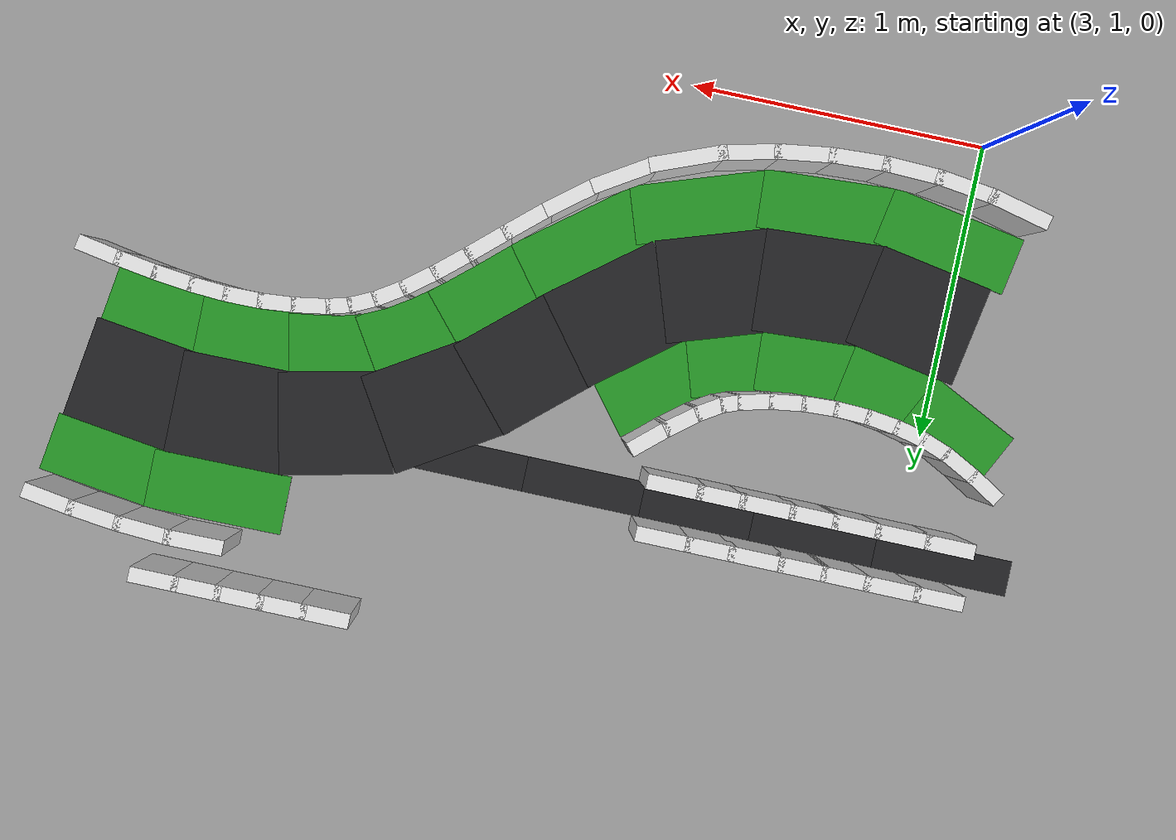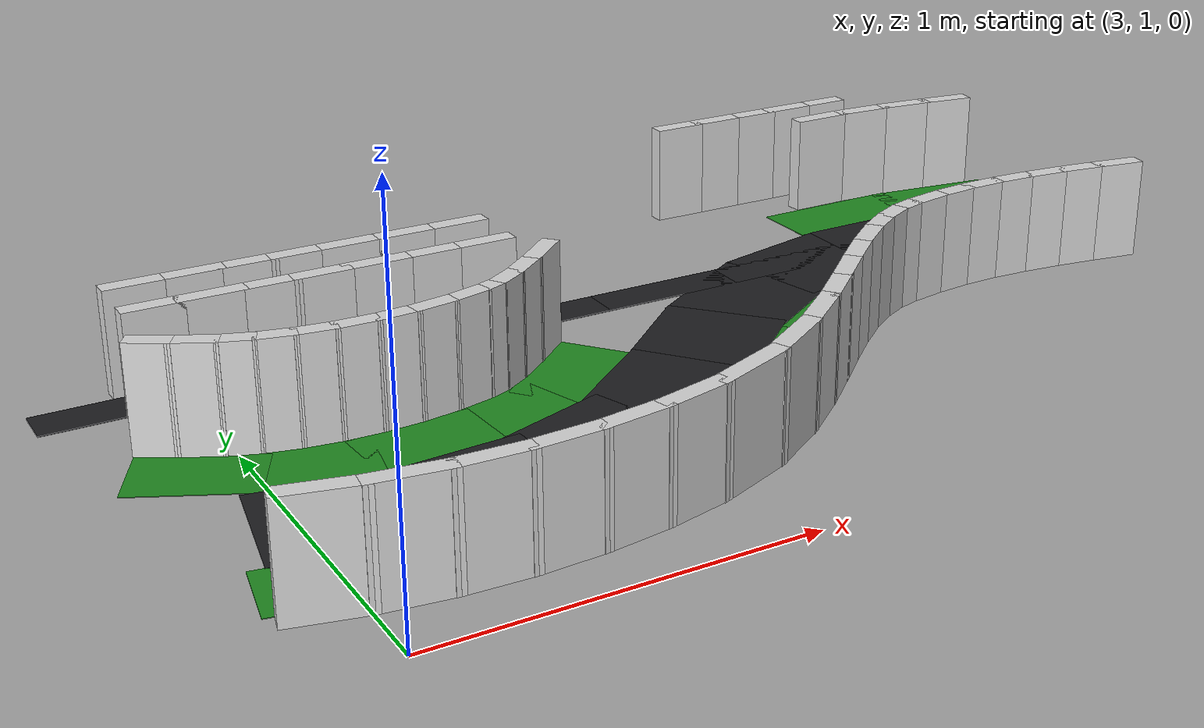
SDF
<sdf version="1.8">
 <world name="it_arena_track">
  <model name="it_arena_track_static">
   <static>true</static>
   <link name="surface_main_97">
    <pose>3.0935 1.6005 0.0015 0 0 -0.17550</pose>
    <collision name="surface_main_97_col">
     <geometry><box><size>0.3899 0.3500 0.0030</size></box></geometry>
    </collision>
    <visual name="surface_main_97_vis">
     <geometry><box><size>0.3899 0.3500 0.0030</size></box></geometry>
     <material><ambient>0.12 0.12 0.13 1</ambient><diffuse>0.12 0.12 0.13 1</diffuse></material>
    </visual>
   </link>
   <link name="surface_main_98">
    <pose>3.4397 1.5818 0.0015 0 0 0.06087</pose>
    <collision name="surface_main_98_col">
     <geometry><box><size>0.4130 0.3500 0.0030</size></box></geometry>
    </collision>
    <visual name="surface_main_98_vis">
     <geometry><box><size>0.4130 0.3500 0.0030</size></box></geometry>
     <material><ambient>0.12 0.12 0.13 1</ambient><diffuse>0.12 0.12 0.13 1</diffuse></material>
    </visual>
   </link>
   <link name="surface_main_99">
    <pose>3.7792 1.6463 0.0015 0 0 0.32265</pose>
    <collision name="surface_main_99_col">
     <geometry><box><size>0.3887 0.3500 0.0030</size></box></geometry>
    </collision>
    <visual name="surface_main_99_vis">
     <geometry><box><size>0.3887 0.3500 0.0030</size></box></geometry>
     <material><ambient>0.12 0.12 0.13 1</ambient><diffuse>0.12 0.12 0.13 1</diffuse></material>
    </visual>
   </link>
   <link name="surface_main_100">
    <pose>4.0807 1.8110 0.0015 0 0 0.66642</pose>
    <collision name="surface_main_100_col">
     <geometry><box><size>0.4132 0.3500 0.0030</size></box></geometry>
    </collision>
    <visual name="surface_main_100_vis">
     <geometry><box><size>0.4132 0.3500 0.0030</size></box></geometry>
     <material><ambient>0.12 0.12 0.13 1</ambient><diffuse>0.12 0.12 0.13 1</diffuse></material>
    </visual>
   </link>
   <link name="surface_main_101">
    <pose>4.3492 2.0346 0.0015 0 0 0.72409</pose>
    <collision name="surface_main_101_col">
     <geometry><box><size>0.3909 0.3500 0.0030</size></box></geometry>
    </collision>
    <visual name="surface_main_101_vis">
     <geometry><box><size>0.3909 0.3500 0.0030</size></box></geometry>
     <material><ambient>0.12 0.12 0.13 1</ambient><diffuse>0.12 0.12 0.13 1</diffuse></material>
    </visual>
   </link>
   <link name="surface_main_102">
    <pose>4.6286 2.2423 0.0015 0 0 0.55899</pose>
    <collision name="surface_main_102_col">
     <geometry><box><size>0.4125 0.3500 0.0030</size></box></geometry>
    </collision>
    <visual name="surface_main_102_vis">
     <geometry><box><size>0.4125 0.3500 0.0030</size></box></geometry>
     <material><ambient>0.12 0.12 0.13 1</ambient><diffuse>0.12 0.12 0.13 1</diffuse></material>
    </visual>
   </link>
   <link name="surface_main_103">
    <pose>4.9458 2.3749 0.0015 0 0 0.22325</pose>
    <collision name="surface_main_103_col">
     <geometry><box><size>0.3896 0.3500 0.0030</size></box></geometry>
    </collision>
    <visual name="surface_main_103_vis">
     <geometry><box><size>0.3896 0.3500 0.0030</size></box></geometry>
     <material><ambient>0.12 0.12 0.13 1</ambient><diffuse>0.12 0.12 0.13 1</diffuse></material>
    </visual>
   </link>
   <link name="surface_main_104">
    <pose>5.2907 2.4143 0.0015 0 0 0.01027</pose>
    <collision name="surface_main_104_col">
     <geometry><box><size>0.4133 0.3500 0.0030</size></box></geometry>
    </collision>
    <visual name="surface_main_104_vis">
     <geometry><box><size>0.4133 0.3500 0.0030</size></box></geometry>
     <material><ambient>0.12 0.12 0.13 1</ambient><diffuse>0.12 0.12 0.13 1</diffuse></material>
    </visual>
   </link>
   <link name="surface_main_105">
    <pose>5.6388 2.3938 0.0015 0 0 -0.13164</pose>
    <collision name="surface_main_105_col">
     <geometry><box><size>0.3908 0.3500 0.0030</size></box></geometry>
    </collision>
    <visual name="surface_main_105_vis">
     <geometry><box><size>0.3908 0.3500 0.0030</size></box></geometry>
     <material><ambient>0.12 0.12 0.13 1</ambient><diffuse>0.12 0.12 0.13 1</diffuse></material>
    </visual>
   </link>
   <link name="surface_branch1_1">
    <pose>2.8378 2.4085 0.0015 0 0 0.00000</pose>
    <collision name="surface_branch1_1_col">
     <geometry><box><size>0.4644 0.1200 0.0030</size></box></geometry>
    </collision>
    <visual name="surface_branch1_1_vis">
     <geometry><box><size>0.4644 0.1200 0.0030</size></box></geometry>
     <material><ambient>0.12 0.12 0.13 1</ambient><diffuse>0.12 0.12 0.13 1</diffuse></material>
    </visual>
   </link>
   <link name="surface_branch1_2">
    <pose>3.2517 2.4080 0.0015 0 0 -0.00236</pose>
    <collision name="surface_branch1_2_col">
     <geometry><box><size>0.4877 0.1200 0.0030</size></box></geometry>
    </collision>
    <visual name="surface_branch1_2_vis">
     <geometry><box><size>0.4877 0.1200 0.0030</size></box></geometry>
     <material><ambient>0.12 0.12 0.13 1</ambient><diffuse>0.12 0.12 0.13 1</diffuse></material>
    </visual>
   </link>
   <link name="surface_branch1_3">
    <pose>3.6556 2.4075 0.0015 0 0 0.00000</pose>
    <collision name="surface_branch1_3_col">
     <geometry><box><size>0.4412 0.1200 0.0030</size></box></geometry>
    </collision>
    <visual name="surface_branch1_3_vis">
     <geometry><box><size>0.4412 0.1200 0.0030</size></box></geometry>
     <material><ambient>0.12 0.12 0.13 1</ambient><diffuse>0.12 0.12 0.13 1</diffuse></material>
    </visual>
   </link>
   <link name="surface_branch1_4">
    <pose>4.0494 2.4075 0.0015 0 0 -0.00001</pose>
    <collision name="surface_branch1_4_col">
     <geometry><box><size>0.4644 0.1200 0.0030</size></box></geometry>
    </collision>
    <visual name="surface_branch1_4_vis">
     <geometry><box><size>0.4644 0.1200 0.0030</size></box></geometry>
     <material><ambient>0.12 0.12 0.13 1</ambient><diffuse>0.12 0.12 0.13 1</diffuse></material>
    </visual>
   </link>
   <link name="surface_branch1_5">
    <pose>4.4633 2.4070 0.0015 0 0 -0.00234</pose>
    <collision name="surface_branch1_5_col">
     <geometry><box><size>0.4877 0.1200 0.0030</size></box></geometry>
    </collision>
    <visual name="surface_branch1_5_vis">
     <geometry><box><size>0.4877 0.1200 0.0030</size></box></geometry>
     <material><ambient>0.12 0.12 0.13 1</ambient><diffuse>0.12 0.12 0.13 1</diffuse></material>
    </visual>
   </link>
   <link name="surface_branch1_6">
    <pose>4.8672 2.4065 0.0015 0 0 0.00000</pose>
    <collision name="surface_branch1_6_col">
     <geometry><box><size>0.4412 0.1200 0.0030</size></box></geometry>
    </collision>
    <visual name="surface_branch1_6_vis">
     <geometry><box><size>0.4412 0.1200 0.0030</size></box></geometry>
     <material><ambient>0.12 0.12 0.13 1</ambient><diffuse>0.12 0.12 0.13 1</diffuse></material>
    </visual>
   </link>
   <link name="grass_main_left_94">
    <pose>2.8803 1.9562 0.0010 0 0 -0.45984</pose>
    <collision name="grass_main_left_94_col">
     <geometry><box><size>0.3309 0.2000 0.0020</size></box></geometry>
    </collision>
    <visual name="grass_main_left_94_vis">
     <geometry><box><size>0.3309 0.2000 0.0020</size></box></geometry>
     <material><ambient>0.13 0.55 0.13 1</ambient><diffuse>0.13 0.55 0.13 1</diffuse></material>
    </visual>
   </link>
   <link name="grass_main_left_95">
    <pose>3.1421 1.8689 0.0010 0 0 -0.17454</pose>
    <collision name="grass_main_left_95_col">
     <geometry><box><size>0.3103 0.2000 0.0020</size></box></geometry>
    </collision>
    <visual name="grass_main_left_95_vis">
     <geometry><box><size>0.3103 0.2000 0.0020</size></box></geometry>
     <material><ambient>0.13 0.55 0.13 1</ambient><diffuse>0.13 0.55 0.13 1</diffuse></material>
    </visual>
   </link>
   <link name="grass_main_left_96">
    <pose>3.4226 1.8544 0.0010 0 0 0.06049</pose>
    <collision name="grass_main_left_96_col">
     <geometry><box><size>0.3400 0.2000 0.0020</size></box></geometry>
    </collision>
    <visual name="grass_main_left_96_vis">
     <geometry><box><size>0.3400 0.2000 0.0020</size></box></geometry>
     <material><ambient>0.13 0.55 0.13 1</ambient><diffuse>0.13 0.55 0.13 1</diffuse></material>
    </visual>
   </link>
   <link name="grass_main_left_97">
    <pose>3.6846 1.8999 0.0010 0 0 0.30865</pose>
    <collision name="grass_main_left_97_col">
     <geometry><box><size>0.2764 0.2000 0.0020</size></box></geometry>
    </collision>
    <visual name="grass_main_left_97_vis">
     <geometry><box><size>0.2764 0.2000 0.0020</size></box></geometry>
     <material><ambient>0.13 0.55 0.13 1</ambient><diffuse>0.13 0.55 0.13 1</diffuse></material>
    </visual>
   </link>
   <link name="grass_main_left_98">
    <pose>3.9179 2.0309 0.0010 0 0 0.67178</pose>
    <collision name="grass_main_left_98_col">
     <geometry><box><size>0.3492 0.2000 0.0020</size></box></geometry>
    </collision>
    <visual name="grass_main_left_98_vis">
     <geometry><box><size>0.3492 0.2000 0.0020</size></box></geometry>
     <material><ambient>0.13 0.55 0.13 1</ambient><diffuse>0.13 0.55 0.13 1</diffuse></material>
    </visual>
   </link>
   <link name="grass_main_left_99">
    <pose>5.2871 2.6880 0.0010 0 0 0.01060</pose>
    <collision name="grass_main_left_99_col">
     <geometry><box><size>0.4731 0.2000 0.0020</size></box></geometry>
    </collision>
    <visual name="grass_main_left_99_vis">
     <geometry><box><size>0.4731 0.2000 0.0020</size></box></geometry>
     <material><ambient>0.13 0.55 0.13 1</ambient><diffuse>0.13 0.55 0.13 1</diffuse></material>
    </visual>
   </link>
   <link name="grass_main_left_100">
    <pose>5.6734 2.6664 0.0010 0 0 -0.13128</pose>
    <collision name="grass_main_left_100_col">
     <geometry><box><size>0.4190 0.2000 0.0020</size></box></geometry>
    </collision>
    <visual name="grass_main_left_100_vis">
     <geometry><box><size>0.4190 0.2000 0.0020</size></box></geometry>
     <material><ambient>0.13 0.55 0.13 1</ambient><diffuse>0.13 0.55 0.13 1</diffuse></material>
    </visual>
   </link>
   <link name="grass_main_right_91">
    <pose>3.0449 1.3320 0.0010 0 0 -0.17614</pose>
    <collision name="grass_main_right_91_col">
     <geometry><box><size>0.4695 0.2000 0.0020</size></box></geometry>
    </collision>
    <visual name="grass_main_right_91_vis">
     <geometry><box><size>0.4695 0.2000 0.0020</size></box></geometry>
     <material><ambient>0.13 0.55 0.13 1</ambient><diffuse>0.13 0.55 0.13 1</diffuse></material>
    </visual>
   </link>
   <link name="grass_main_right_92">
    <pose>3.4568 1.3092 0.0010 0 0 0.06114</pose>
    <collision name="grass_main_right_92_col">
     <geometry><box><size>0.4861 0.2000 0.0020</size></box></geometry>
    </collision>
    <visual name="grass_main_right_92_vis">
     <geometry><box><size>0.4861 0.2000 0.0020</size></box></geometry>
     <material><ambient>0.13 0.55 0.13 1</ambient><diffuse>0.13 0.55 0.13 1</diffuse></material>
    </visual>
   </link>
   <link name="grass_main_right_93">
    <pose>3.8738 1.3928 0.0010 0 0 0.33037</pose>
    <collision name="grass_main_right_93_col">
     <geometry><box><size>0.5010 0.2000 0.0020</size></box></geometry>
    </collision>
    <visual name="grass_main_right_93_vis">
     <geometry><box><size>0.5010 0.2000 0.0020</size></box></geometry>
     <material><ambient>0.13 0.55 0.13 1</ambient><diffuse>0.13 0.55 0.13 1</diffuse></material>
    </visual>
   </link>
   <link name="grass_main_right_94">
    <pose>4.2435 1.5911 0.0010 0 0 0.66249</pose>
    <collision name="grass_main_right_94_col">
     <geometry><box><size>0.4773 0.2000 0.0020</size></box></geometry>
    </collision>
    <visual name="grass_main_right_94_vis">
     <geometry><box><size>0.4773 0.2000 0.0020</size></box></geometry>
     <material><ambient>0.13 0.55 0.13 1</ambient><diffuse>0.13 0.55 0.13 1</diffuse></material>
    </visual>
   </link>
   <link name="grass_main_right_95">
    <pose>4.5284 1.8262 0.0010 0 0 0.72478</pose>
    <collision name="grass_main_right_95_col">
     <geometry><box><size>0.3728 0.2000 0.0020</size></box></geometry>
    </collision>
    <visual name="grass_main_right_95_vis">
     <geometry><box><size>0.3728 0.2000 0.0020</size></box></geometry>
     <material><ambient>0.13 0.55 0.13 1</ambient><diffuse>0.13 0.55 0.13 1</diffuse></material>
    </visual>
   </link>
   <link name="grass_main_right_96">
    <pose>4.7676 2.0084 0.0010 0 0 0.56548</pose>
    <collision name="grass_main_right_96_col">
     <geometry><box><size>0.3211 0.2000 0.0020</size></box></geometry>
    </collision>
    <visual name="grass_main_right_96_vis">
     <geometry><box><size>0.3211 0.2000 0.0020</size></box></geometry>
     <material><ambient>0.13 0.55 0.13 1</ambient><diffuse>0.13 0.55 0.13 1</diffuse></material>
    </visual>
   </link>
   <link name="grass_main_right_97">
    <pose>5.0130 2.1111 0.0010 0 0 0.21547</pose>
    <collision name="grass_main_right_97_col">
     <geometry><box><size>0.3002 0.2000 0.0020</size></box></geometry>
    </collision>
    <visual name="grass_main_right_97_vis">
     <geometry><box><size>0.3002 0.2000 0.0020</size></box></geometry>
     <material><ambient>0.13 0.55 0.13 1</ambient><diffuse>0.13 0.55 0.13 1</diffuse></material>
    </visual>
   </link>
   <link name="grass_main_right_98">
    <pose>5.2942 2.1405 0.0010 0 0 0.00981</pose>
    <collision name="grass_main_right_98_col">
     <geometry><box><size>0.3535 0.2000 0.0020</size></box></geometry>
    </collision>
    <visual name="grass_main_right_98_vis">
     <geometry><box><size>0.3535 0.2000 0.0020</size></box></geometry>
     <material><ambient>0.13 0.55 0.13 1</ambient><diffuse>0.13 0.55 0.13 1</diffuse></material>
    </visual>
   </link>
   <link name="grass_main_right_99">
    <pose>5.6042 2.1213 0.0010 0 0 -0.13206</pose>
    <collision name="grass_main_right_99_col">
     <geometry><box><size>0.3627 0.2000 0.0020</size></box></geometry>
    </collision>
    <visual name="grass_main_right_99_vis">
     <geometry><box><size>0.3627 0.2000 0.0020</size></box></geometry>
     <material><ambient>0.13 0.55 0.13 1</ambient><diffuse>0.13 0.55 0.13 1</diffuse></material>
    </visual>
   </link>
   <link name="walls_main_left_148">
    <pose>5.3759 2.9635 0.1500 0 0 3.14159</pose>
    <collision name="walls_main_left_148_col">
     <geometry><box><size>0.1610 0.0500 0.3000</size></box></geometry>
     <surface><friction><ode><mu>0.8</mu><mu2>0.8</mu2></ode></friction></surface>
    </collision>
    <visual name="walls_main_left_148_vis">
     <geometry><box><size>0.1610 0.0500 0.3000</size></box></geometry>
     <material><ambient>0.85 0.85 0.85 1</ambient><diffuse>0.85 0.85 0.85 1</diffuse></material>
    </visual>
   </link>
   <link name="walls_main_left_149">
    <pose>5.2359 2.9635 0.1500 0 0 3.14159</pose>
    <collision name="walls_main_left_149_col">
     <geometry><box><size>0.1610 0.0500 0.3000</size></box></geometry>
     <surface><friction><ode><mu>0.8</mu><mu2>0.8</mu2></ode></friction></surface>
    </collision>
    <visual name="walls_main_left_149_vis">
     <geometry><box><size>0.1610 0.0500 0.3000</size></box></geometry>
     <material><ambient>0.85 0.85 0.85 1</ambient><diffuse>0.85 0.85 0.85 1</diffuse></material>
    </visual>
   </link>
   <link name="walls_main_left_150">
    <pose>5.0959 2.9635 0.1500 0 0 3.14159</pose>
    <collision name="walls_main_left_150_col">
     <geometry><box><size>0.1610 0.0500 0.3000</size></box></geometry>
     <surface><friction><ode><mu>0.8</mu><mu2>0.8</mu2></ode></friction></surface>
    </collision>
    <visual name="walls_main_left_150_vis">
     <geometry><box><size>0.1610 0.0500 0.3000</size></box></geometry>
     <material><ambient>0.85 0.85 0.85 1</ambient><diffuse>0.85 0.85 0.85 1</diffuse></material>
    </visual>
   </link>
   <link name="walls_main_left_151">
    <pose>4.9559 2.9635 0.1500 0 0 3.14159</pose>
    <collision name="walls_main_left_151_col">
     <geometry><box><size>0.1610 0.0500 0.3000</size></box></geometry>
     <surface><friction><ode><mu>0.8</mu><mu2>0.8</mu2></ode></friction></surface>
    </collision>
    <visual name="walls_main_left_151_vis">
     <geometry><box><size>0.1610 0.0500 0.3000</size></box></geometry>
     <material><ambient>0.85 0.85 0.85 1</ambient><diffuse>0.85 0.85 0.85 1</diffuse></material>
    </visual>
   </link>
   <link name="walls_main_left_152">
    <pose>4.8155 2.9635 0.1500 0 0 3.14159</pose>
    <collision name="walls_main_left_152_col">
     <geometry><box><size>0.1619 0.0500 0.3000</size></box></geometry>
     <surface><friction><ode><mu>0.8</mu><mu2>0.8</mu2></ode></friction></surface>
    </collision>
    <visual name="walls_main_left_152_vis">
     <geometry><box><size>0.1619 0.0500 0.3000</size></box></geometry>
     <material><ambient>0.85 0.85 0.85 1</ambient><diffuse>0.85 0.85 0.85 1</diffuse></material>
    </visual>
   </link>
   <link name="walls_main_left_237">
    <pose>2.8392 2.1143 0.1500 0 0 -0.54598</pose>
    <collision name="walls_main_left_237_col">
     <geometry><box><size>0.1172 0.0500 0.3000</size></box></geometry>
     <surface><friction><ode><mu>0.8</mu><mu2>0.8</mu2></ode></friction></surface>
    </collision>
    <visual name="walls_main_left_237_vis">
     <geometry><box><size>0.1172 0.0500 0.3000</size></box></geometry>
     <material><ambient>0.85 0.85 0.85 1</ambient><diffuse>0.85 0.85 0.85 1</diffuse></material>
    </visual>
   </link>
   <link name="walls_main_left_238">
    <pose>2.9315 2.0625 0.1500 0 0 -0.48029</pose>
    <collision name="walls_main_left_238_col">
     <geometry><box><size>0.1264 0.0500 0.3000</size></box></geometry>
     <surface><friction><ode><mu>0.8</mu><mu2>0.8</mu2></ode></friction></surface>
    </collision>
    <visual name="walls_main_left_238_vis">
     <geometry><box><size>0.1264 0.0500 0.3000</size></box></geometry>
     <material><ambient>0.85 0.85 0.85 1</ambient><diffuse>0.85 0.85 0.85 1</diffuse></material>
    </visual>
   </link>
   <link name="walls_main_left_239">
    <pose>3.0210 2.0220 0.1500 0 0 -0.35497</pose>
    <collision name="walls_main_left_239_col">
     <geometry><box><size>0.1000 0.0500 0.3000</size></box></geometry>
     <surface><friction><ode><mu>0.8</mu><mu2>0.8</mu2></ode></friction></surface>
    </collision>
    <visual name="walls_main_left_239_vis">
     <geometry><box><size>0.1000 0.0500 0.3000</size></box></geometry>
     <material><ambient>0.85 0.85 0.85 1</ambient><diffuse>0.85 0.85 0.85 1</diffuse></material>
    </visual>
   </link>
   <link name="walls_main_left_240">
    <pose>3.1081 1.9960 0.1500 0 0 -0.22960</pose>
    <collision name="walls_main_left_240_col">
     <geometry><box><size>0.1096 0.0500 0.3000</size></box></geometry>
     <surface><friction><ode><mu>0.8</mu><mu2>0.8</mu2></ode></friction></surface>
    </collision>
    <visual name="walls_main_left_240_vis">
     <geometry><box><size>0.1096 0.0500 0.3000</size></box></geometry>
     <material><ambient>0.85 0.85 0.85 1</ambient><diffuse>0.85 0.85 0.85 1</diffuse></material>
    </visual>
   </link>
   <link name="walls_main_left_241">
    <pose>3.2032 1.9788 0.1500 0 0 -0.12999</pose>
    <collision name="walls_main_left_241_col">
     <geometry><box><size>0.1129 0.0500 0.3000</size></box></geometry>
     <surface><friction><ode><mu>0.8</mu><mu2>0.8</mu2></ode></friction></surface>
    </collision>
    <visual name="walls_main_left_241_vis">
     <geometry><box><size>0.1129 0.0500 0.3000</size></box></geometry>
     <material><ambient>0.85 0.85 0.85 1</ambient><diffuse>0.85 0.85 0.85 1</diffuse></material>
    </visual>
   </link>
   <link name="walls_main_left_242">
    <pose>3.3038 1.9706 0.1500 0 0 -0.03653</pose>
    <collision name="walls_main_left_242_col">
     <geometry><box><size>0.1195 0.0500 0.3000</size></box></geometry>
     <surface><friction><ode><mu>0.8</mu><mu2>0.8</mu2></ode></friction></surface>
    </collision>
    <visual name="walls_main_left_242_vis">
     <geometry><box><size>0.1195 0.0500 0.3000</size></box></geometry>
     <material><ambient>0.85 0.85 0.85 1</ambient><diffuse>0.85 0.85 0.85 1</diffuse></material>
    </visual>
   </link>
   <link name="walls_main_left_243">
    <pose>3.4082 1.9715 0.1500 0 0 0.05372</pose>
    <collision name="walls_main_left_243_col">
     <geometry><box><size>0.1208 0.0500 0.3000</size></box></geometry>
     <surface><friction><ode><mu>0.8</mu><mu2>0.8</mu2></ode></friction></surface>
    </collision>
    <visual name="walls_main_left_243_vis">
     <geometry><box><size>0.1208 0.0500 0.3000</size></box></geometry>
     <material><ambient>0.85 0.85 0.85 1</ambient><diffuse>0.85 0.85 0.85 1</diffuse></material>
    </visual>
   </link>
   <link name="walls_main_left_244">
    <pose>3.5125 1.9818 0.1500 0 0 0.14415</pose>
    <collision name="walls_main_left_244_col">
     <geometry><box><size>0.1205 0.0500 0.3000</size></box></geometry>
     <surface><friction><ode><mu>0.8</mu><mu2>0.8</mu2></ode></friction></surface>
    </collision>
    <visual name="walls_main_left_244_vis">
     <geometry><box><size>0.1205 0.0500 0.3000</size></box></geometry>
     <material><ambient>0.85 0.85 0.85 1</ambient><diffuse>0.85 0.85 0.85 1</diffuse></material>
    </visual>
   </link>
   <link name="walls_main_left_245">
    <pose>3.6135 2.0012 0.1500 0 0 0.23746</pose>
    <collision name="walls_main_left_245_col">
     <geometry><box><size>0.1162 0.0500 0.3000</size></box></geometry>
     <surface><friction><ode><mu>0.8</mu><mu2>0.8</mu2></ode></friction></surface>
    </collision>
    <visual name="walls_main_left_245_vis">
     <geometry><box><size>0.1162 0.0500 0.3000</size></box></geometry>
     <material><ambient>0.85 0.85 0.85 1</ambient><diffuse>0.85 0.85 0.85 1</diffuse></material>
    </visual>
   </link>
   <link name="walls_main_left_246">
    <pose>3.6897 2.0235 0.1500 0 0 0.36499</pose>
    <collision name="walls_main_left_246_col">
     <geometry><box><size>0.0667 0.0500 0.3000</size></box></geometry>
     <surface><friction><ode><mu>0.8</mu><mu2>0.8</mu2></ode></friction></surface>
    </collision>
    <visual name="walls_main_left_246_vis">
     <geometry><box><size>0.0667 0.0500 0.3000</size></box></geometry>
     <material><ambient>0.85 0.85 0.85 1</ambient><diffuse>0.85 0.85 0.85 1</diffuse></material>
    </visual>
   </link>
   <link name="walls_main_left_247">
    <pose>3.7516 2.0559 0.1500 0 0 0.56491</pose>
    <collision name="walls_main_left_247_col">
     <geometry><box><size>0.0948 0.0500 0.3000</size></box></geometry>
     <surface><friction><ode><mu>0.8</mu><mu2>0.8</mu2></ode></friction></surface>
    </collision>
    <visual name="walls_main_left_247_vis">
     <geometry><box><size>0.0948 0.0500 0.3000</size></box></geometry>
     <material><ambient>0.85 0.85 0.85 1</ambient><diffuse>0.85 0.85 0.85 1</diffuse></material>
    </visual>
   </link>
   <link name="walls_main_left_248">
    <pose>3.8293 2.1123 0.1500 0 0 0.67436</pose>
    <collision name="walls_main_left_248_col">
     <geometry><box><size>0.1263 0.0500 0.3000</size></box></geometry>
     <surface><friction><ode><mu>0.8</mu><mu2>0.8</mu2></ode></friction></surface>
    </collision>
    <visual name="walls_main_left_248_vis">
     <geometry><box><size>0.1263 0.0500 0.3000</size></box></geometry>
     <material><ambient>0.85 0.85 0.85 1</ambient><diffuse>0.85 0.85 0.85 1</diffuse></material>
    </visual>
   </link>
   <link name="walls_main_left_249">
    <pose>3.9197 2.1888 0.1500 0 0 0.72727</pose>
    <collision name="walls_main_left_249_col">
     <geometry><box><size>0.1464 0.0500 0.3000</size></box></geometry>
     <surface><friction><ode><mu>0.8</mu><mu2>0.8</mu2></ode></friction></surface>
    </collision>
    <visual name="walls_main_left_249_vis">
     <geometry><box><size>0.1464 0.0500 0.3000</size></box></geometry>
     <material><ambient>0.85 0.85 0.85 1</ambient><diffuse>0.85 0.85 0.85 1</diffuse></material>
    </visual>
   </link>
   <link name="walls_main_left_250">
    <pose>5.2751 2.8212 0.1500 0 0 0.01429</pose>
    <collision name="walls_main_left_250_col">
     <geometry><box><size>0.1943 0.0500 0.3000</size></box></geometry>
     <surface><friction><ode><mu>0.8</mu><mu2>0.8</mu2></ode></friction></surface>
    </collision>
    <visual name="walls_main_left_250_vis">
     <geometry><box><size>0.1943 0.0500 0.3000</size></box></geometry>
     <material><ambient>0.85 0.85 0.85 1</ambient><diffuse>0.85 0.85 0.85 1</diffuse></material>
    </visual>
   </link>
   <link name="walls_main_left_251">
    <pose>5.4422 2.8177 0.1500 0 0 -0.05693</pose>
    <collision name="walls_main_left_251_col">
     <geometry><box><size>0.1903 0.0500 0.3000</size></box></geometry>
     <surface><friction><ode><mu>0.8</mu><mu2>0.8</mu2></ode></friction></surface>
    </collision>
    <visual name="walls_main_left_251_vis">
     <geometry><box><size>0.1903 0.0500 0.3000</size></box></geometry>
     <material><ambient>0.85 0.85 0.85 1</ambient><diffuse>0.85 0.85 0.85 1</diffuse></material>
    </visual>
   </link>
   <link name="walls_main_left_252">
    <pose>5.6035 2.8042 0.1500 0 0 -0.11103</pose>
    <collision name="walls_main_left_252_col">
     <geometry><box><size>0.1821 0.0500 0.3000</size></box></geometry>
     <surface><friction><ode><mu>0.8</mu><mu2>0.8</mu2></ode></friction></surface>
    </collision>
    <visual name="walls_main_left_252_vis">
     <geometry><box><size>0.1821 0.0500 0.3000</size></box></geometry>
     <material><ambient>0.85 0.85 0.85 1</ambient><diffuse>0.85 0.85 0.85 1</diffuse></material>
    </visual>
   </link>
   <link name="walls_main_left_253">
    <pose>5.7577 2.7841 0.1500 0 0 -0.14907</pose>
    <collision name="walls_main_left_253_col">
     <geometry><box><size>0.1757 0.0500 0.3000</size></box></geometry>
     <surface><friction><ode><mu>0.8</mu><mu2>0.8</mu2></ode></friction></surface>
    </collision>
    <visual name="walls_main_left_253_vis">
     <geometry><box><size>0.1757 0.0500 0.3000</size></box></geometry>
     <material><ambient>0.85 0.85 0.85 1</ambient><diffuse>0.85 0.85 0.85 1</diffuse></material>
    </visual>
   </link>
   <link name="walls_main_right_228">
    <pose>2.9193 1.2199 0.1500 0 0 -0.23398</pose>
    <collision name="walls_main_right_228_col">
     <geometry><box><size>0.2122 0.0500 0.3000</size></box></geometry>
     <surface><friction><ode><mu>0.8</mu><mu2>0.8</mu2></ode></friction></surface>
    </collision>
    <visual name="walls_main_right_228_vis">
     <geometry><box><size>0.2122 0.0500 0.3000</size></box></geometry>
     <material><ambient>0.85 0.85 0.85 1</ambient><diffuse>0.85 0.85 0.85 1</diffuse></material>
    </visual>
   </link>
   <link name="walls_main_right_229">
    <pose>3.0991 1.1867 0.1500 0 0 -0.13032</pose>
    <collision name="walls_main_right_229_col">
     <geometry><box><size>0.2089 0.0500 0.3000</size></box></geometry>
     <surface><friction><ode><mu>0.8</mu><mu2>0.8</mu2></ode></friction></surface>
    </collision>
    <visual name="walls_main_right_229_vis">
     <geometry><box><size>0.2089 0.0500 0.3000</size></box></geometry>
     <material><ambient>0.85 0.85 0.85 1</ambient><diffuse>0.85 0.85 0.85 1</diffuse></material>
    </visual>
   </link>
   <link name="walls_main_right_230">
    <pose>3.2771 1.1718 0.1500 0 0 -0.03530</pose>
    <collision name="walls_main_right_230_col">
     <geometry><box><size>0.2023 0.0500 0.3000</size></box></geometry>
     <surface><friction><ode><mu>0.8</mu><mu2>0.8</mu2></ode></friction></surface>
    </collision>
    <visual name="walls_main_right_230_vis">
     <geometry><box><size>0.2023 0.0500 0.3000</size></box></geometry>
     <material><ambient>0.85 0.85 0.85 1</ambient><diffuse>0.85 0.85 0.85 1</diffuse></material>
    </visual>
   </link>
   <link name="walls_main_right_231">
    <pose>3.4522 1.1735 0.1500 0 0 0.05427</pose>
    <collision name="walls_main_right_231_col">
     <geometry><box><size>0.2010 0.0500 0.3000</size></box></geometry>
     <surface><friction><ode><mu>0.8</mu><mu2>0.8</mu2></ode></friction></surface>
    </collision>
    <visual name="walls_main_right_231_vis">
     <geometry><box><size>0.2010 0.0500 0.3000</size></box></geometry>
     <material><ambient>0.85 0.85 0.85 1</ambient><diffuse>0.85 0.85 0.85 1</diffuse></material>
    </visual>
   </link>
   <link name="walls_main_right_232">
    <pose>3.6261 1.1907 0.1500 0 0 0.14354</pose>
    <collision name="walls_main_right_232_col">
     <geometry><box><size>0.2013 0.0500 0.3000</size></box></geometry>
     <surface><friction><ode><mu>0.8</mu><mu2>0.8</mu2></ode></friction></surface>
    </collision>
    <visual name="walls_main_right_232_vis">
     <geometry><box><size>0.2013 0.0500 0.3000</size></box></geometry>
     <material><ambient>0.85 0.85 0.85 1</ambient><diffuse>0.85 0.85 0.85 1</diffuse></material>
    </visual>
   </link>
   <link name="walls_main_right_233">
    <pose>3.7997 1.2242 0.1500 0 0 0.23646</pose>
    <collision name="walls_main_right_233_col">
     <geometry><box><size>0.2056 0.0500 0.3000</size></box></geometry>
     <surface><friction><ode><mu>0.8</mu><mu2>0.8</mu2></ode></friction></surface>
    </collision>
    <visual name="walls_main_right_233_vis">
     <geometry><box><size>0.2056 0.0500 0.3000</size></box></geometry>
     <material><ambient>0.85 0.85 0.85 1</ambient><diffuse>0.85 0.85 0.85 1</diffuse></material>
    </visual>
   </link>
   <link name="walls_main_right_234">
    <pose>3.9894 1.2862 0.1500 0 0 0.38056</pose>
    <collision name="walls_main_right_234_col">
     <geometry><box><size>0.2546 0.0500 0.3000</size></box></geometry>
     <surface><friction><ode><mu>0.8</mu><mu2>0.8</mu2></ode></friction></surface>
    </collision>
    <visual name="walls_main_right_234_vis">
     <geometry><box><size>0.2546 0.0500 0.3000</size></box></geometry>
     <material><ambient>0.85 0.85 0.85 1</ambient><diffuse>0.85 0.85 0.85 1</diffuse></material>
    </visual>
   </link>
   <link name="walls_main_right_235">
    <pose>4.1756 1.3799 0.1500 0 0 0.56217</pose>
    <collision name="walls_main_right_235_col">
     <geometry><box><size>0.2268 0.0500 0.3000</size></box></geometry>
     <surface><friction><ode><mu>0.8</mu><mu2>0.8</mu2></ode></friction></surface>
    </collision>
    <visual name="walls_main_right_235_vis">
     <geometry><box><size>0.2268 0.0500 0.3000</size></box></geometry>
     <material><ambient>0.85 0.85 0.85 1</ambient><diffuse>0.85 0.85 0.85 1</diffuse></material>
    </visual>
   </link>
   <link name="walls_main_right_236">
    <pose>4.3255 1.4855 0.1500 0 0 0.67269</pose>
    <collision name="walls_main_right_236_col">
     <geometry><box><size>0.1956 0.0500 0.3000</size></box></geometry>
     <surface><friction><ode><mu>0.8</mu><mu2>0.8</mu2></ode></friction></surface>
    </collision>
    <visual name="walls_main_right_236_vis">
     <geometry><box><size>0.1956 0.0500 0.3000</size></box></geometry>
     <material><ambient>0.85 0.85 0.85 1</ambient><diffuse>0.85 0.85 0.85 1</diffuse></material>
    </visual>
   </link>
   <link name="walls_main_right_237">
    <pose>4.4491 1.5892 0.1500 0 0 0.72659</pose>
    <collision name="walls_main_right_237_col">
     <geometry><box><size>0.1756 0.0500 0.3000</size></box></geometry>
     <surface><friction><ode><mu>0.8</mu><mu2>0.8</mu2></ode></friction></surface>
    </collision>
    <visual name="walls_main_right_237_vis">
     <geometry><box><size>0.1756 0.0500 0.3000</size></box></geometry>
     <material><ambient>0.85 0.85 0.85 1</ambient><diffuse>0.85 0.85 0.85 1</diffuse></material>
    </visual>
   </link>
   <link name="walls_main_right_238">
    <pose>4.5574 1.6866 0.1500 0 0 0.73863</pose>
    <collision name="walls_main_right_238_col">
     <geometry><box><size>0.1595 0.0500 0.3000</size></box></geometry>
     <surface><friction><ode><mu>0.8</mu><mu2>0.8</mu2></ode></friction></surface>
    </collision>
    <visual name="walls_main_right_238_vis">
     <geometry><box><size>0.1595 0.0500 0.3000</size></box></geometry>
     <material><ambient>0.85 0.85 0.85 1</ambient><diffuse>0.85 0.85 0.85 1</diffuse></material>
    </visual>
   </link>
   <link name="walls_main_right_239">
    <pose>4.6553 1.7739 0.1500 0 0 0.71729</pose>
    <collision name="walls_main_right_239_col">
     <geometry><box><size>0.1422 0.0500 0.3000</size></box></geometry>
     <surface><friction><ode><mu>0.8</mu><mu2>0.8</mu2></ode></friction></surface>
    </collision>
    <visual name="walls_main_right_239_vis">
     <geometry><box><size>0.1422 0.0500 0.3000</size></box></geometry>
     <material><ambient>0.85 0.85 0.85 1</ambient><diffuse>0.85 0.85 0.85 1</diffuse></material>
    </visual>
   </link>
   <link name="walls_main_right_240">
    <pose>4.7458 1.8492 0.1500 0 0 0.66830</pose>
    <collision name="walls_main_right_240_col">
     <geometry><box><size>0.1288 0.0500 0.3000</size></box></geometry>
     <surface><friction><ode><mu>0.8</mu><mu2>0.8</mu2></ode></friction></surface>
    </collision>
    <visual name="walls_main_right_240_vis">
     <geometry><box><size>0.1288 0.0500 0.3000</size></box></geometry>
     <material><ambient>0.85 0.85 0.85 1</ambient><diffuse>0.85 0.85 0.85 1</diffuse></material>
    </visual>
   </link>
   <link name="walls_main_right_241">
    <pose>4.8304 1.9104 0.1500 0 0 0.57869</pose>
    <collision name="walls_main_right_241_col">
     <geometry><box><size>0.1115 0.0500 0.3000</size></box></geometry>
     <surface><friction><ode><mu>0.8</mu><mu2>0.8</mu2></ode></friction></surface>
    </collision>
    <visual name="walls_main_right_241_vis">
     <geometry><box><size>0.1115 0.0500 0.3000</size></box></geometry>
     <material><ambient>0.85 0.85 0.85 1</ambient><diffuse>0.85 0.85 0.85 1</diffuse></material>
    </visual>
   </link>
   <link name="walls_main_right_242">
    <pose>4.9084 1.9550 0.1500 0 0 0.44761</pose>
    <collision name="walls_main_right_242_col">
     <geometry><box><size>0.0956 0.0500 0.3000</size></box></geometry>
     <surface><friction><ode><mu>0.8</mu><mu2>0.8</mu2></ode></friction></surface>
    </collision>
    <visual name="walls_main_right_242_vis">
     <geometry><box><size>0.0956 0.0500 0.3000</size></box></geometry>
     <material><ambient>0.85 0.85 0.85 1</ambient><diffuse>0.85 0.85 0.85 1</diffuse></material>
    </visual>
   </link>
   <link name="walls_main_right_243">
    <pose>4.9807 1.9828 0.1500 0 0 0.27613</pose>
    <collision name="walls_main_right_243_col">
     <geometry><box><size>0.0833 0.0500 0.3000</size></box></geometry>
     <surface><friction><ode><mu>0.8</mu><mu2>0.8</mu2></ode></friction></surface>
    </collision>
    <visual name="walls_main_right_243_vis">
     <geometry><box><size>0.0833 0.0500 0.3000</size></box></geometry>
     <material><ambient>0.85 0.85 0.85 1</ambient><diffuse>0.85 0.85 0.85 1</diffuse></material>
    </visual>
   </link>
   <link name="walls_main_right_244">
    <pose>5.0691 2.0018 0.1500 0 0 0.16837</pose>
    <collision name="walls_main_right_244_col">
     <geometry><box><size>0.1249 0.0500 0.3000</size></box></geometry>
     <surface><friction><ode><mu>0.8</mu><mu2>0.8</mu2></ode></friction></surface>
    </collision>
    <visual name="walls_main_right_244_vis">
     <geometry><box><size>0.1249 0.0500 0.3000</size></box></geometry>
     <material><ambient>0.85 0.85 0.85 1</ambient><diffuse>0.85 0.85 0.85 1</diffuse></material>
    </visual>
   </link>
   <link name="walls_main_right_245">
    <pose>5.1766 2.0159 0.1500 0 0 0.09331</pose>
    <collision name="walls_main_right_245_col">
     <geometry><box><size>0.1247 0.0500 0.3000</size></box></geometry>
     <surface><friction><ode><mu>0.8</mu><mu2>0.8</mu2></ode></friction></surface>
    </collision>
    <visual name="walls_main_right_245_vis">
     <geometry><box><size>0.1247 0.0500 0.3000</size></box></geometry>
     <material><ambient>0.85 0.85 0.85 1</ambient><diffuse>0.85 0.85 0.85 1</diffuse></material>
    </visual>
   </link>
   <link name="walls_main_right_246">
    <pose>5.2861 2.0218 0.1500 0 0 0.01458</pose>
    <collision name="walls_main_right_246_col">
     <geometry><box><size>0.1276 0.0500 0.3000</size></box></geometry>
     <surface><friction><ode><mu>0.8</mu><mu2>0.8</mu2></ode></friction></surface>
    </collision>
    <visual name="walls_main_right_246_vis">
     <geometry><box><size>0.1276 0.0500 0.3000</size></box></geometry>
     <material><ambient>0.85 0.85 0.85 1</ambient><diffuse>0.85 0.85 0.85 1</diffuse></material>
    </visual>
   </link>
   <link name="walls_main_right_247">
    <pose>5.3987 2.0193 0.1500 0 0 -0.05803</pose>
    <collision name="walls_main_right_247_col">
     <geometry><box><size>0.1316 0.0500 0.3000</size></box></geometry>
     <surface><friction><ode><mu>0.8</mu><mu2>0.8</mu2></ode></friction></surface>
    </collision>
    <visual name="walls_main_right_247_vis">
     <geometry><box><size>0.1316 0.0500 0.3000</size></box></geometry>
     <material><ambient>0.85 0.85 0.85 1</ambient><diffuse>0.85 0.85 0.85 1</diffuse></material>
    </visual>
   </link>
   <link name="walls_main_right_248">
    <pose>5.5162 2.0092 0.1500 0 0 -0.11155</pose>
    <collision name="walls_main_right_248_col">
     <geometry><box><size>0.1398 0.0500 0.3000</size></box></geometry>
     <surface><friction><ode><mu>0.8</mu><mu2>0.8</mu2></ode></friction></surface>
    </collision>
    <visual name="walls_main_right_248_vis">
     <geometry><box><size>0.1398 0.0500 0.3000</size></box></geometry>
     <material><ambient>0.85 0.85 0.85 1</ambient><diffuse>0.85 0.85 0.85 1</diffuse></material>
    </visual>
   </link>
   <link name="walls_main_right_249">
    <pose>5.6395 1.9930 0.1500 0 0 -0.14922</pose>
    <collision name="walls_main_right_249_col">
     <geometry><box><size>0.1462 0.0500 0.3000</size></box></geometry>
     <surface><friction><ode><mu>0.8</mu><mu2>0.8</mu2></ode></friction></surface>
    </collision>
    <visual name="walls_main_right_249_vis">
     <geometry><box><size>0.1462 0.0500 0.3000</size></box></geometry>
     <material><ambient>0.85 0.85 0.85 1</ambient><diffuse>0.85 0.85 0.85 1</diffuse></material>
    </visual>
   </link>
   <link name="walls_main_right_250">
    <pose>5.7672 1.9721 0.1500 0 0 -0.17418</pose>
    <collision name="walls_main_right_250_col">
     <geometry><box><size>0.1515 0.0500 0.3000</size></box></geometry>
     <surface><friction><ode><mu>0.8</mu><mu2>0.8</mu2></ode></friction></surface>
    </collision>
    <visual name="walls_main_right_250_vis">
     <geometry><box><size>0.1515 0.0500 0.3000</size></box></geometry>
     <material><ambient>0.85 0.85 0.85 1</ambient><diffuse>0.85 0.85 0.85 1</diffuse></material>
    </visual>
   </link>
   <link name="walls_branch1_left_0">
    <pose>2.9085 2.4935 0.1500 0 0 0.00000</pose>
    <collision name="walls_branch1_left_0_col">
     <geometry><box><size>0.1626 0.0500 0.3000</size></box></geometry>
     <surface><friction><ode><mu>0.8</mu><mu2>0.8</mu2></ode></friction></surface>
    </collision>
    <visual name="walls_branch1_left_0_vis">
     <geometry><box><size>0.1626 0.0500 0.3000</size></box></geometry>
     <material><ambient>0.85 0.85 0.85 1</ambient><diffuse>0.85 0.85 0.85 1</diffuse></material>
    </visual>
   </link>
   <link name="walls_branch1_left_1">
    <pose>3.0599 2.4935 0.1500 0 0 0.00000</pose>
    <collision name="walls_branch1_left_1_col">
     <geometry><box><size>0.1858 0.0500 0.3000</size></box></geometry>
     <surface><friction><ode><mu>0.8</mu><mu2>0.8</mu2></ode></friction></surface>
    </collision>
    <visual name="walls_branch1_left_1_vis">
     <geometry><box><size>0.1858 0.0500 0.3000</size></box></geometry>
     <material><ambient>0.85 0.85 0.85 1</ambient><diffuse>0.85 0.85 0.85 1</diffuse></material>
    </visual>
   </link>
   <link name="walls_branch1_left_2">
    <pose>3.2114 2.4930 0.1500 0 0 -0.00707</pose>
    <collision name="walls_branch1_left_2_col">
     <geometry><box><size>0.1625 0.0500 0.3000</size></box></geometry>
     <surface><friction><ode><mu>0.8</mu><mu2>0.8</mu2></ode></friction></surface>
    </collision>
    <visual name="walls_branch1_left_2_vis">
     <geometry><box><size>0.1625 0.0500 0.3000</size></box></geometry>
     <material><ambient>0.85 0.85 0.85 1</ambient><diffuse>0.85 0.85 0.85 1</diffuse></material>
    </visual>
   </link>
   <link name="walls_branch1_left_3">
    <pose>3.3527 2.4925 0.1500 0 0 0.00000</pose>
    <collision name="walls_branch1_left_3_col">
     <geometry><box><size>0.1626 0.0500 0.3000</size></box></geometry>
     <surface><friction><ode><mu>0.8</mu><mu2>0.8</mu2></ode></friction></surface>
    </collision>
    <visual name="walls_branch1_left_3_vis">
     <geometry><box><size>0.1626 0.0500 0.3000</size></box></geometry>
     <material><ambient>0.85 0.85 0.85 1</ambient><diffuse>0.85 0.85 0.85 1</diffuse></material>
    </visual>
   </link>
   <link name="walls_branch1_left_4">
    <pose>3.5041 2.4925 0.1500 0 0 0.00000</pose>
    <collision name="walls_branch1_left_4_col">
     <geometry><box><size>0.1858 0.0500 0.3000</size></box></geometry>
     <surface><friction><ode><mu>0.8</mu><mu2>0.8</mu2></ode></friction></surface>
    </collision>
    <visual name="walls_branch1_left_4_vis">
     <geometry><box><size>0.1858 0.0500 0.3000</size></box></geometry>
     <material><ambient>0.85 0.85 0.85 1</ambient><diffuse>0.85 0.85 0.85 1</diffuse></material>
    </visual>
   </link>
   <link name="walls_branch1_left_5">
    <pose>3.6556 2.4925 0.1500 0 0 0.00000</pose>
    <collision name="walls_branch1_left_5_col">
     <geometry><box><size>0.1626 0.0500 0.3000</size></box></geometry>
     <surface><friction><ode><mu>0.8</mu><mu2>0.8</mu2></ode></friction></surface>
    </collision>
    <visual name="walls_branch1_left_5_vis">
     <geometry><box><size>0.1626 0.0500 0.3000</size></box></geometry>
     <material><ambient>0.85 0.85 0.85 1</ambient><diffuse>0.85 0.85 0.85 1</diffuse></material>
    </visual>
   </link>
   <link name="walls_branch1_left_6">
    <pose>3.8070 2.4925 0.1500 0 0 0.00000</pose>
    <collision name="walls_branch1_left_6_col">
     <geometry><box><size>0.1858 0.0500 0.3000</size></box></geometry>
     <surface><friction><ode><mu>0.8</mu><mu2>0.8</mu2></ode></friction></surface>
    </collision>
    <visual name="walls_branch1_left_6_vis">
     <geometry><box><size>0.1858 0.0500 0.3000</size></box></geometry>
     <material><ambient>0.85 0.85 0.85 1</ambient><diffuse>0.85 0.85 0.85 1</diffuse></material>
    </visual>
   </link>
   <link name="walls_branch1_right_0">
    <pose>2.9085 2.3235 0.1500 0 0 0.00000</pose>
    <collision name="walls_branch1_right_0_col">
     <geometry><box><size>0.1626 0.0500 0.3000</size></box></geometry>
     <surface><friction><ode><mu>0.8</mu><mu2>0.8</mu2></ode></friction></surface>
    </collision>
    <visual name="walls_branch1_right_0_vis">
     <geometry><box><size>0.1626 0.0500 0.3000</size></box></geometry>
     <material><ambient>0.85 0.85 0.85 1</ambient><diffuse>0.85 0.85 0.85 1</diffuse></material>
    </visual>
   </link>
   <link name="walls_branch1_right_1">
    <pose>3.0599 2.3235 0.1500 0 0 0.00000</pose>
    <collision name="walls_branch1_right_1_col">
     <geometry><box><size>0.1858 0.0500 0.3000</size></box></geometry>
     <surface><friction><ode><mu>0.8</mu><mu2>0.8</mu2></ode></friction></surface>
    </collision>
    <visual name="walls_branch1_right_1_vis">
     <geometry><box><size>0.1858 0.0500 0.3000</size></box></geometry>
     <material><ambient>0.85 0.85 0.85 1</ambient><diffuse>0.85 0.85 0.85 1</diffuse></material>
    </visual>
   </link>
   <link name="walls_branch1_right_2">
    <pose>3.2114 2.3230 0.1500 0 0 -0.00707</pose>
    <collision name="walls_branch1_right_2_col">
     <geometry><box><size>0.1625 0.0500 0.3000</size></box></geometry>
     <surface><friction><ode><mu>0.8</mu><mu2>0.8</mu2></ode></friction></surface>
    </collision>
    <visual name="walls_branch1_right_2_vis">
     <geometry><box><size>0.1625 0.0500 0.3000</size></box></geometry>
     <material><ambient>0.85 0.85 0.85 1</ambient><diffuse>0.85 0.85 0.85 1</diffuse></material>
    </visual>
   </link>
   <link name="walls_branch1_right_3">
    <pose>3.3527 2.3225 0.1500 0 0 0.00000</pose>
    <collision name="walls_branch1_right_3_col">
     <geometry><box><size>0.1626 0.0500 0.3000</size></box></geometry>
     <surface><friction><ode><mu>0.8</mu><mu2>0.8</mu2></ode></friction></surface>
    </collision>
    <visual name="walls_branch1_right_3_vis">
     <geometry><box><size>0.1626 0.0500 0.3000</size></box></geometry>
     <material><ambient>0.85 0.85 0.85 1</ambient><diffuse>0.85 0.85 0.85 1</diffuse></material>
    </visual>
   </link>
   <link name="walls_branch1_right_4">
    <pose>3.5041 2.3225 0.1500 0 0 0.00000</pose>
    <collision name="walls_branch1_right_4_col">
     <geometry><box><size>0.1858 0.0500 0.3000</size></box></geometry>
     <surface><friction><ode><mu>0.8</mu><mu2>0.8</mu2></ode></friction></surface>
    </collision>
    <visual name="walls_branch1_right_4_vis">
     <geometry><box><size>0.1858 0.0500 0.3000</size></box></geometry>
     <material><ambient>0.85 0.85 0.85 1</ambient><diffuse>0.85 0.85 0.85 1</diffuse></material>
    </visual>
   </link>
   <link name="walls_branch1_right_5">
    <pose>3.6556 2.3225 0.1500 0 0 0.00000</pose>
    <collision name="walls_branch1_right_5_col">
     <geometry><box><size>0.1626 0.0500 0.3000</size></box></geometry>
     <surface><friction><ode><mu>0.8</mu><mu2>0.8</mu2></ode></friction></surface>
    </collision>
    <visual name="walls_branch1_right_5_vis">
     <geometry><box><size>0.1626 0.0500 0.3000</size></box></geometry>
     <material><ambient>0.85 0.85 0.85 1</ambient><diffuse>0.85 0.85 0.85 1</diffuse></material>
    </visual>
   </link>
   <link name="walls_branch1_right_6">
    <pose>3.8070 2.3225 0.1500 0 0 0.00000</pose>
    <collision name="walls_branch1_right_6_col">
     <geometry><box><size>0.1858 0.0500 0.3000</size></box></geometry>
     <surface><friction><ode><mu>0.8</mu><mu2>0.8</mu2></ode></friction></surface>
    </collision>
    <visual name="walls_branch1_right_6_vis">
     <geometry><box><size>0.1858 0.0500 0.3000</size></box></geometry>
     <material><ambient>0.85 0.85 0.85 1</ambient><diffuse>0.85 0.85 0.85 1</diffuse></material>
    </visual>
   </link>
  </model>
 </world>
</sdf>
